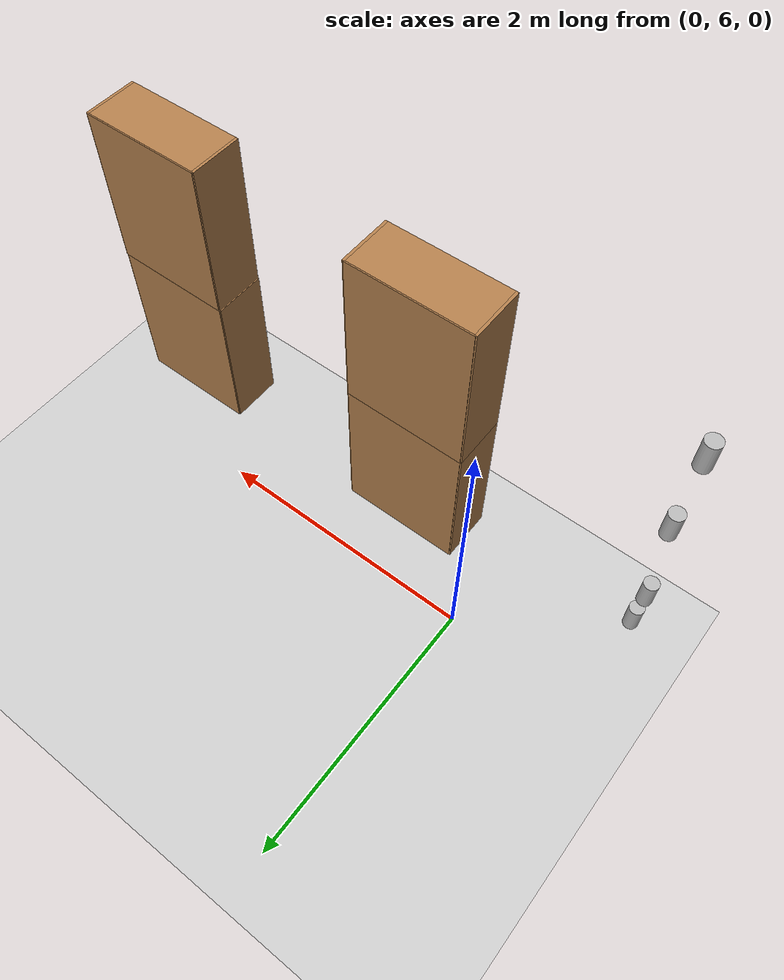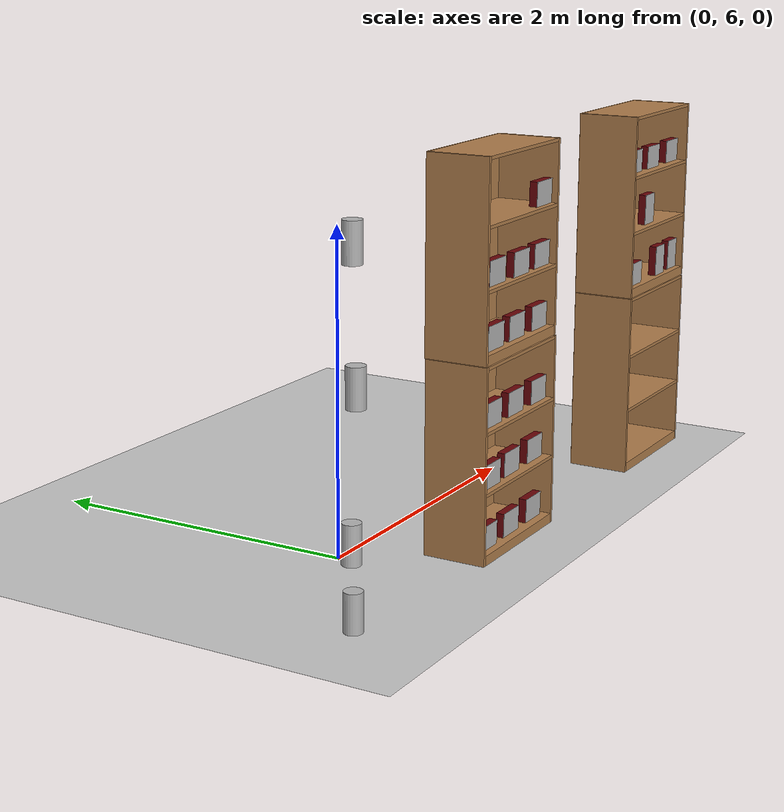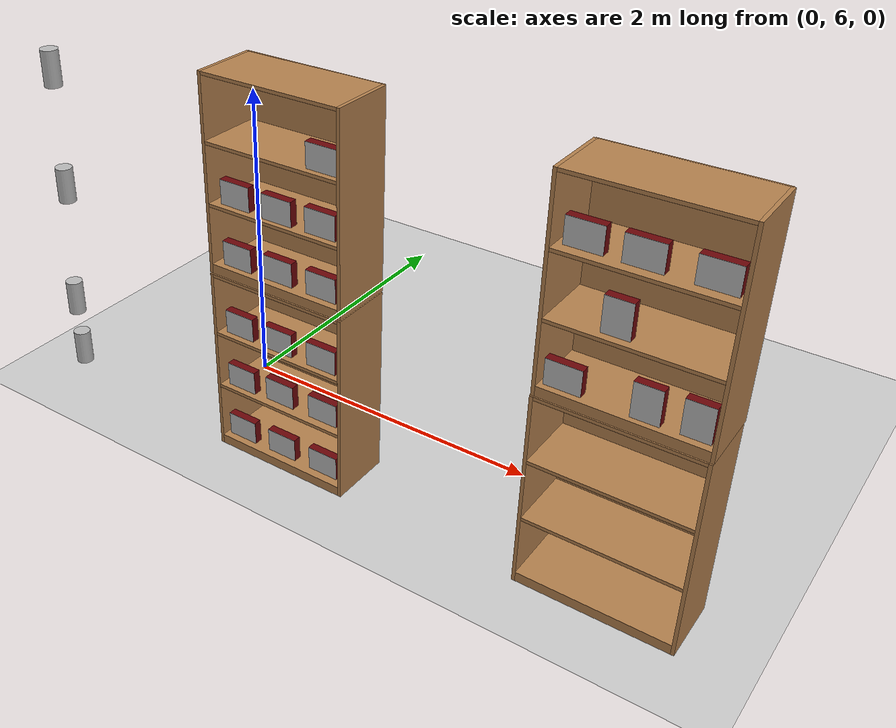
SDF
<sdf version="1.7">
 <world name="default">
  <model name="ground_plane">
   <static>1</static>
   <link name="link">
    <collision name="collision">
     <geometry><plane><normal>0 0 1</normal><size>100 100</size></plane></geometry>
     <surface><friction><ode><mu>100</mu><mu2>50</mu2></ode></friction></surface>
    </collision>
    <visual name="visual">
     <cast_shadows>0</cast_shadows>
     <geometry><plane><normal>0 0 1</normal><size>100 100</size></plane></geometry>
     <material>
      <script><uri>file://media/materials/scripts/gazebo.material</uri><name>Gazebo/Grey</name></script>
     </material>
    </visual>
   </link>
  </model>
  <model name="bookshelf">
   <static>1</static>
   <link name="link">
    <inertial><mass>1</mass></inertial>
    <collision name="back">
     <pose>0 0.005 0.6 0 -0 0</pose>
     <geometry><box><size>0.9 0.01 1.2</size></box></geometry>
    </collision>
    <visual name="visual1">
     <pose>0 0.005 0.6 0 -0 0</pose>
     <geometry><box><size>0.9 0.01 1.2</size></box></geometry>
     <material>
      <script><uri>file://media/materials/scripts/gazebo.material</uri><name>Gazebo/Wood</name></script>
     </material>
    </visual>
    <collision name="left_side">
     <pose>0.45 -0.195 0.6 0 -0 0</pose>
     <geometry><box><size>0.02 0.4 1.2</size></box></geometry>
    </collision>
    <visual name="visual2">
     <pose>0.45 -0.195 0.6 0 -0 0</pose>
     <geometry><box><size>0.02 0.4 1.2</size></box></geometry>
     <material>
      <script><uri>file://media/materials/scripts/gazebo.material</uri><name>Gazebo/Wood</name></script>
     </material>
    </visual>
    <collision name="right_side">
     <pose>-0.45 -0.195 0.6 0 -0 0</pose>
     <geometry><box><size>0.02 0.4 1.2</size></box></geometry>
    </collision>
    <visual name="visual3">
     <pose>-0.45 -0.195 0.6 0 -0 0</pose>
     <geometry><box><size>0.02 0.4 1.2</size></box></geometry>
     <material>
      <script><uri>file://media/materials/scripts/gazebo.material</uri><name>Gazebo/Wood</name></script>
     </material>
    </visual>
    <collision name="bottom">
     <pose>0 -0.195 0.03 0 -0 0</pose>
     <geometry><box><size>0.88 0.4 0.06</size></box></geometry>
    </collision>
    <visual name="visual4">
     <pose>0 -0.195 0.03 0 -0 0</pose>
     <geometry><box><size>0.88 0.4 0.06</size></box></geometry>
     <material>
      <script><uri>file://media/materials/scripts/gazebo.material</uri><name>Gazebo/Wood</name></script>
     </material>
    </visual>
    <collision name="top">
     <pose>0 -0.195 1.19 0 -0 0</pose>
     <geometry><box><size>0.88 0.4 0.02</size></box></geometry>
    </collision>
    <visual name="visual5">
     <pose>0 -0.195 1.19 0 -0 0</pose>
     <geometry><box><size>0.88 0.4 0.02</size></box></geometry>
     <material>
      <script><uri>file://media/materials/scripts/gazebo.material</uri><name>Gazebo/Wood</name></script>
     </material>
    </visual>
    <collision name="low_shelf">
     <pose>0 -0.195 0.43 0 -0 0</pose>
     <geometry><box><size>0.88 0.4 0.02</size></box></geometry>
    </collision>
    <visual name="visual6">
     <pose>0 -0.195 0.43 0 -0 0</pose>
     <geometry><box><size>0.88 0.4 0.02</size></box></geometry>
     <material>
      <script><uri>file://media/materials/scripts/gazebo.material</uri><name>Gazebo/Wood</name></script>
     </material>
    </visual>
    <collision name="high_shelf">
     <pose>0 -0.195 0.8 0 -0 0</pose>
     <geometry><box><size>0.88 0.4 0.02</size></box></geometry>
    </collision>
    <visual name="visual7">
     <pose>0 -0.195 0.8 0 -0 0</pose>
     <geometry><box><size>0.88 0.4 0.02</size></box></geometry>
     <material>
      <script><uri>file://media/materials/scripts/gazebo.material</uri><name>Gazebo/Wood</name></script>
     </material>
    </visual>
   </link>
   <pose>2.83268 5.58259 0 0 -0 0</pose>
  </model>
  <model name="bookshelf_1">
   <static>1</static>
   <link name="link">
    <inertial><mass>1</mass></inertial>
    <collision name="back">
     <pose>0 0.005 0.6 0 -0 0</pose>
     <geometry><box><size>0.9 0.01 1.2</size></box></geometry>
    </collision>
    <visual name="visual1">
     <pose>0 0.005 0.6 0 -0 0</pose>
     <geometry><box><size>0.9 0.01 1.2</size></box></geometry>
     <material>
      <script><uri>file://media/materials/scripts/gazebo.material</uri><name>Gazebo/Wood</name></script>
     </material>
    </visual>
    <collision name="left_side">
     <pose>0.45 -0.195 0.6 0 -0 0</pose>
     <geometry><box><size>0.02 0.4 1.2</size></box></geometry>
    </collision>
    <visual name="visual2">
     <pose>0.45 -0.195 0.6 0 -0 0</pose>
     <geometry><box><size>0.02 0.4 1.2</size></box></geometry>
     <material>
      <script><uri>file://media/materials/scripts/gazebo.material</uri><name>Gazebo/Wood</name></script>
     </material>
    </visual>
    <collision name="right_side">
     <pose>-0.45 -0.195 0.6 0 -0 0</pose>
     <geometry><box><size>0.02 0.4 1.2</size></box></geometry>
    </collision>
    <visual name="visual3">
     <pose>-0.45 -0.195 0.6 0 -0 0</pose>
     <geometry><box><size>0.02 0.4 1.2</size></box></geometry>
     <material>
      <script><uri>file://media/materials/scripts/gazebo.material</uri><name>Gazebo/Wood</name></script>
     </material>
    </visual>
    <collision name="bottom">
     <pose>0 -0.195 0.03 0 -0 0</pose>
     <geometry><box><size>0.88 0.4 0.06</size></box></geometry>
    </collision>
    <visual name="visual4">
     <pose>0 -0.195 0.03 0 -0 0</pose>
     <geometry><box><size>0.88 0.4 0.06</size></box></geometry>
     <material>
      <script><uri>file://media/materials/scripts/gazebo.material</uri><name>Gazebo/Wood</name></script>
     </material>
    </visual>
    <collision name="top">
     <pose>0 -0.195 1.19 0 -0 0</pose>
     <geometry><box><size>0.88 0.4 0.02</size></box></geometry>
    </collision>
    <visual name="visual5">
     <pose>0 -0.195 1.19 0 -0 0</pose>
     <geometry><box><size>0.88 0.4 0.02</size></box></geometry>
     <material>
      <script><uri>file://media/materials/scripts/gazebo.material</uri><name>Gazebo/Wood</name></script>
     </material>
    </visual>
    <collision name="low_shelf">
     <pose>0 -0.195 0.43 0 -0 0</pose>
     <geometry><box><size>0.88 0.4 0.02</size></box></geometry>
    </collision>
    <visual name="visual6">
     <pose>0 -0.195 0.43 0 -0 0</pose>
     <geometry><box><size>0.88 0.4 0.02</size></box></geometry>
     <material>
      <script><uri>file://media/materials/scripts/gazebo.material</uri><name>Gazebo/Wood</name></script>
     </material>
    </visual>
    <collision name="high_shelf">
     <pose>0 -0.195 0.8 0 -0 0</pose>
     <geometry><box><size>0.88 0.4 0.02</size></box></geometry>
    </collision>
    <visual name="visual7">
     <pose>0 -0.195 0.8 0 -0 0</pose>
     <geometry><box><size>0.88 0.4 0.02</size></box></geometry>
     <material>
      <script><uri>file://media/materials/scripts/gazebo.material</uri><name>Gazebo/Wood</name></script>
     </material>
    </visual>
   </link>
   <pose>0.770602 5.5901 0 0 -0 0</pose>
  </model>
  <model name="bookshelf_3_clone_clone_0">
   <static>1</static>
   <link name="link">
    <inertial><mass>1</mass></inertial>
    <collision name="back">
     <pose>0 0.005 0.6 0 -0 0</pose>
     <geometry><box><size>0.9 0.01 1.2</size></box></geometry>
    </collision>
    <visual name="visual1">
     <pose>0 0.005 0.6 0 -0 0</pose>
     <geometry><box><size>0.9 0.01 1.2</size></box></geometry>
     <material>
      <script><uri>file://media/materials/scripts/gazebo.material</uri><name>Gazebo/Wood</name></script>
     </material>
    </visual>
    <collision name="left_side">
     <pose>0.45 -0.195 0.6 0 -0 0</pose>
     <geometry><box><size>0.02 0.4 1.2</size></box></geometry>
    </collision>
    <visual name="visual2">
     <pose>0.45 -0.195 0.6 0 -0 0</pose>
     <geometry><box><size>0.02 0.4 1.2</size></box></geometry>
     <material>
      <script><uri>file://media/materials/scripts/gazebo.material</uri><name>Gazebo/Wood</name></script>
     </material>
    </visual>
    <collision name="right_side">
     <pose>-0.45 -0.195 0.6 0 -0 0</pose>
     <geometry><box><size>0.02 0.4 1.2</size></box></geometry>
    </collision>
    <visual name="visual3">
     <pose>-0.45 -0.195 0.6 0 -0 0</pose>
     <geometry><box><size>0.02 0.4 1.2</size></box></geometry>
     <material>
      <script><uri>file://media/materials/scripts/gazebo.material</uri><name>Gazebo/Wood</name></script>
     </material>
    </visual>
    <collision name="bottom">
     <pose>0 -0.195 0.03 0 -0 0</pose>
     <geometry><box><size>0.88 0.4 0.06</size></box></geometry>
    </collision>
    <visual name="visual4">
     <pose>0 -0.195 0.03 0 -0 0</pose>
     <geometry><box><size>0.88 0.4 0.06</size></box></geometry>
     <material>
      <script><uri>file://media/materials/scripts/gazebo.material</uri><name>Gazebo/Wood</name></script>
     </material>
    </visual>
    <collision name="top">
     <pose>0 -0.195 1.19 0 -0 0</pose>
     <geometry><box><size>0.88 0.4 0.02</size></box></geometry>
    </collision>
    <visual name="visual5">
     <pose>0 -0.195 1.19 0 -0 0</pose>
     <geometry><box><size>0.88 0.4 0.02</size></box></geometry>
     <material>
      <script><uri>file://media/materials/scripts/gazebo.material</uri><name>Gazebo/Wood</name></script>
     </material>
    </visual>
    <collision name="low_shelf">
     <pose>0 -0.195 0.43 0 -0 0</pose>
     <geometry><box><size>0.88 0.4 0.02</size></box></geometry>
    </collision>
    <visual name="visual6">
     <pose>0 -0.195 0.43 0 -0 0</pose>
     <geometry><box><size>0.88 0.4 0.02</size></box></geometry>
     <material>
      <script><uri>file://media/materials/scripts/gazebo.material</uri><name>Gazebo/Wood</name></script>
     </material>
    </visual>
    <collision name="high_shelf">
     <pose>0 -0.195 0.8 0 -0 0</pose>
     <geometry><box><size>0.88 0.4 0.02</size></box></geometry>
    </collision>
    <visual name="visual7">
     <pose>0 -0.195 0.8 0 -0 0</pose>
     <geometry><box><size>0.88 0.4 0.02</size></box></geometry>
     <material>
      <script><uri>file://media/materials/scripts/gazebo.material</uri><name>Gazebo/Wood</name></script>
     </material>
    </visual>
   </link>
   <pose>0.76852 5.59426 1.20481 0 -0 0</pose>
  </model>
  <model name="bookshelf_3_clone_clone_1">
   <static>1</static>
   <link name="link">
    <inertial><mass>1</mass></inertial>
    <collision name="back">
     <pose>0 0.005 0.6 0 -0 0</pose>
     <geometry><box><size>0.9 0.01 1.2</size></box></geometry>
    </collision>
    <visual name="visual1">
     <pose>0 0.005 0.6 0 -0 0</pose>
     <geometry><box><size>0.9 0.01 1.2</size></box></geometry>
     <material>
      <script><uri>file://media/materials/scripts/gazebo.material</uri><name>Gazebo/Wood</name></script>
     </material>
    </visual>
    <collision name="left_side">
     <pose>0.45 -0.195 0.6 0 -0 0</pose>
     <geometry><box><size>0.02 0.4 1.2</size></box></geometry>
    </collision>
    <visual name="visual2">
     <pose>0.45 -0.195 0.6 0 -0 0</pose>
     <geometry><box><size>0.02 0.4 1.2</size></box></geometry>
     <material>
      <script><uri>file://media/materials/scripts/gazebo.material</uri><name>Gazebo/Wood</name></script>
     </material>
    </visual>
    <collision name="right_side">
     <pose>-0.45 -0.195 0.6 0 -0 0</pose>
     <geometry><box><size>0.02 0.4 1.2</size></box></geometry>
    </collision>
    <visual name="visual3">
     <pose>-0.45 -0.195 0.6 0 -0 0</pose>
     <geometry><box><size>0.02 0.4 1.2</size></box></geometry>
     <material>
      <script><uri>file://media/materials/scripts/gazebo.material</uri><name>Gazebo/Wood</name></script>
     </material>
    </visual>
    <collision name="bottom">
     <pose>0 -0.195 0.03 0 -0 0</pose>
     <geometry><box><size>0.88 0.4 0.06</size></box></geometry>
    </collision>
    <visual name="visual4">
     <pose>0 -0.195 0.03 0 -0 0</pose>
     <geometry><box><size>0.88 0.4 0.06</size></box></geometry>
     <material>
      <script><uri>file://media/materials/scripts/gazebo.material</uri><name>Gazebo/Wood</name></script>
     </material>
    </visual>
    <collision name="top">
     <pose>0 -0.195 1.19 0 -0 0</pose>
     <geometry><box><size>0.88 0.4 0.02</size></box></geometry>
    </collision>
    <visual name="visual5">
     <pose>0 -0.195 1.19 0 -0 0</pose>
     <geometry><box><size>0.88 0.4 0.02</size></box></geometry>
     <material>
      <script><uri>file://media/materials/scripts/gazebo.material</uri><name>Gazebo/Wood</name></script>
     </material>
    </visual>
    <collision name="low_shelf">
     <pose>0 -0.195 0.43 0 -0 0</pose>
     <geometry><box><size>0.88 0.4 0.02</size></box></geometry>
    </collision>
    <visual name="visual6">
     <pose>0 -0.195 0.43 0 -0 0</pose>
     <geometry><box><size>0.88 0.4 0.02</size></box></geometry>
     <material>
      <script><uri>file://media/materials/scripts/gazebo.material</uri><name>Gazebo/Wood</name></script>
     </material>
    </visual>
    <collision name="high_shelf">
     <pose>0 -0.195 0.8 0 -0 0</pose>
     <geometry><box><size>0.88 0.4 0.02</size></box></geometry>
    </collision>
    <visual name="visual7">
     <pose>0 -0.195 0.8 0 -0 0</pose>
     <geometry><box><size>0.88 0.4 0.02</size></box></geometry>
     <material>
      <script><uri>file://media/materials/scripts/gazebo.material</uri><name>Gazebo/Wood</name></script>
     </material>
    </visual>
   </link>
   <pose>2.83627 5.58516 1.20481 0 -0 0</pose>
  </model>
  <model name="beer_1_clone_1">
   <link name="link">
    <pose>0 0 0.115 0 -0 0</pose>
    <inertial>
     <mass>0.39</mass>
     <inertia><ixx>0.00058</ixx><ixy>0</ixy><ixz>0</ixz><iyy>0.00058</iyy><iyz>0</iyz><izz>0.00019</izz></inertia>
    </inertial>
    <collision name="collision">
     <geometry><cylinder><radius>0.055</radius><length>0.23</length></cylinder></geometry>
    </collision>
    <visual name="visual">
     <geometry><cylinder><radius>0.055</radius><length>0.23</length></cylinder></geometry>
     <material>
      <script>
       <uri>model://beer/materials/scripts</uri>
       <uri>model://beer/materials/textures</uri>
       <name>Beer/Diffuse</name>
      </script>
     </material>
    </visual>
   </link>
   <pose>-1.00016 5.28662 0.059991 1.7e-05 -1.2e-05 0.010684</pose>
  </model>
  <model name="beer_3_clone_1_clone_1">
   <link name="link">
    <pose>0 0 0.115 0 -0 0</pose>
    <inertial>
     <mass>0.39</mass>
     <inertia><ixx>0.00058</ixx><ixy>0</ixy><ixz>0</ixz><iyy>0.00058</iyy><iyz>0</iyz><izz>0.00019</izz></inertia>
    </inertial>
    <collision name="collision">
     <geometry><cylinder><radius>0.055</radius><length>0.23</length></cylinder></geometry>
    </collision>
    <visual name="visual">
     <geometry><cylinder><radius>0.055</radius><length>0.23</length></cylinder></geometry>
     <material>
      <script>
       <uri>model://beer/materials/scripts</uri>
       <uri>model://beer/materials/textures</uri>
       <name>Beer/Diffuse</name>
      </script>
     </material>
    </visual>
   </link>
   <pose>-1.01357 5.288 0.440001 1e-05 -1.2e-05 0.004628</pose>
  </model>
  <model name="biscuit_box">
   <link name="link">
    <pose>0 0 0.025 0 -0 0</pose>
    <visual name="visual">
     <geometry><box><size>0.2 0.15 0.05</size></box></geometry>
     <material>
      <ambient>0.423 0.019 0.035 1</ambient>
      <diffuse>0.423 0.019 0.035 1</diffuse>
      <specular>0.01 0.01 0.01 1</specular>
      <emissive>0 0 0 1</emissive>
     </material>
    </visual>
    <collision name="collision"><geometry><box><size>0.1 0.1 0.15</size></box></geometry></collision>
   </link>
   <link name="link_1">
    <pose>0 0 0.05 0 -0 0</pose>
    <visual name="visual">
     <geometry><box><size>0.2 0.15 0.001</size></box></geometry>
     <material>
      <script>
       <uri>model://biscuit_box/materials/scripts</uri>
       <uri>model://biscuit_box/materials/textures</uri>
       <name>biscuit_pat</name>
      </script>
     </material>
    </visual>
    <collision name="collision"><geometry><box><size>0.1 0.1 0.15</size></box></geometry></collision>
   </link>
   <static>1</static>
   <pose>0.456028 5.28742 0.137981 1.59184 -0 0</pose>
  </model>
  <model name="biscuit_box_clone">
   <link name="link">
    <pose>0 0 0.025 0 -0 0</pose>
    <visual name="visual">
     <geometry><box><size>0.2 0.15 0.05</size></box></geometry>
     <material>
      <ambient>0.423 0.019 0.035 1</ambient>
      <diffuse>0.423 0.019 0.035 1</diffuse>
      <specular>0.01 0.01 0.01 1</specular>
      <emissive>0 0 0 1</emissive>
     </material>
    </visual>
    <collision name="collision"><geometry><box><size>0.1 0.1 0.15</size></box></geometry></collision>
   </link>
   <link name="link_1">
    <pose>0 0 0.05 0 -0 0</pose>
    <visual name="visual">
     <geometry><box><size>0.2 0.15 0.001</size></box></geometry>
     <material>
      <script>
       <uri>model://biscuit_box/materials/scripts</uri>
       <uri>model://biscuit_box/materials/textures</uri>
       <name>biscuit_pat</name>
      </script>
     </material>
    </visual>
    <collision name="collision"><geometry><box><size>0.1 0.1 0.15</size></box></geometry></collision>
   </link>
   <static>1</static>
   <pose>0.756443 5.29336 0.137981 1.59184 -0 0</pose>
  </model>
  <model name="biscuit_box_clone_clone">
   <link name="link">
    <pose>0 0 0.025 0 -0 0</pose>
    <visual name="visual">
     <geometry><box><size>0.2 0.15 0.05</size></box></geometry>
     <material>
      <ambient>0.423 0.019 0.035 1</ambient>
      <diffuse>0.423 0.019 0.035 1</diffuse>
      <specular>0.01 0.01 0.01 1</specular>
      <emissive>0 0 0 1</emissive>
     </material>
    </visual>
    <collision name="collision"><geometry><box><size>0.1 0.1 0.15</size></box></geometry></collision>
   </link>
   <link name="link_1">
    <pose>0 0 0.05 0 -0 0</pose>
    <visual name="visual">
     <geometry><box><size>0.2 0.15 0.001</size></box></geometry>
     <material>
      <script>
       <uri>model://biscuit_box/materials/scripts</uri>
       <uri>model://biscuit_box/materials/textures</uri>
       <name>biscuit_pat</name>
      </script>
     </material>
    </visual>
    <collision name="collision"><geometry><box><size>0.1 0.1 0.15</size></box></geometry></collision>
   </link>
   <static>1</static>
   <pose>1.062 5.29498 0.137981 1.59184 -0 0</pose>
  </model>
  <model name="biscuit_box_clone_0_clone">
   <link name="link">
    <pose>0 0 0.025 0 -0 0</pose>
    <visual name="visual">
     <geometry><box><size>0.2 0.15 0.05</size></box></geometry>
     <material>
      <ambient>0.423 0.019 0.035 1</ambient>
      <diffuse>0.423 0.019 0.035 1</diffuse>
      <specular>0.01 0.01 0.01 1</specular>
      <emissive>0 0 0 1</emissive>
     </material>
    </visual>
    <collision name="collision"><geometry><box><size>0.1 0.1 0.15</size></box></geometry></collision>
   </link>
   <link name="link_1">
    <pose>0 0 0.05 0 -0 0</pose>
    <visual name="visual">
     <geometry><box><size>0.2 0.15 0.001</size></box></geometry>
     <material>
      <script>
       <uri>model://biscuit_box/materials/scripts</uri>
       <uri>model://biscuit_box/materials/textures</uri>
       <name>biscuit_pat</name>
      </script>
     </material>
    </visual>
    <collision name="collision"><geometry><box><size>0.1 0.1 0.15</size></box></geometry></collision>
   </link>
   <static>1</static>
   <pose>0.752248 5.29333 0.517024 1.59184 -0 0</pose>
  </model>
  <model name="biscuit_box_clone_0_clone_clone">
   <link name="link">
    <pose>0 0 0.025 0 -0 0</pose>
    <visual name="visual">
     <geometry><box><size>0.2 0.15 0.05</size></box></geometry>
     <material>
      <ambient>0.423 0.019 0.035 1</ambient>
      <diffuse>0.423 0.019 0.035 1</diffuse>
      <specular>0.01 0.01 0.01 1</specular>
      <emissive>0 0 0 1</emissive>
     </material>
    </visual>
    <collision name="collision"><geometry><box><size>0.1 0.1 0.15</size></box></geometry></collision>
   </link>
   <link name="link_1">
    <pose>0 0 0.05 0 -0 0</pose>
    <visual name="visual">
     <geometry><box><size>0.2 0.15 0.001</size></box></geometry>
     <material>
      <script>
       <uri>model://biscuit_box/materials/scripts</uri>
       <uri>model://biscuit_box/materials/textures</uri>
       <name>biscuit_pat</name>
      </script>
     </material>
    </visual>
    <collision name="collision"><geometry><box><size>0.1 0.1 0.15</size></box></geometry></collision>
   </link>
   <static>1</static>
   <pose>1.06428 5.29499 0.517024 1.59184 -0 0</pose>
  </model>
  <model name="beer_3_clone_clone_clone_clone_1_clone_1_clone_0">
   <link name="link">
    <pose>0 0 0.115 0 -0 0</pose>
    <inertial>
     <mass>0.39</mass>
     <inertia><ixx>0.00058</ixx><ixy>0</ixy><ixz>0</ixz><iyy>0.00058</iyy><iyz>0</iyz><izz>0.00019</izz></inertia>
    </inertial>
    <collision name="collision">
     <geometry><cylinder><radius>0.055</radius><length>0.23</length></cylinder></geometry>
    </collision>
    <visual name="visual">
     <geometry><cylinder><radius>0.055</radius><length>0.23</length></cylinder></geometry>
     <material>
      <script>
       <uri>model://beer/materials/scripts</uri>
       <uri>model://beer/materials/textures</uri>
       <name>Beer/Diffuse</name>
      </script>
     </material>
    </visual>
   </link>
   <pose>-0.965632 5.28994 1.2648 0 -1.4e-05 0.025683</pose>
  </model>
  <model name="beer_3_clone_clone_clone_clone_1_clone_2_clone_clone_clone_1_clone">
   <link name="link">
    <pose>0 0 0.115 0 -0 0</pose>
    <inertial>
     <mass>0.39</mass>
     <inertia><ixx>0.00058</ixx><ixy>0</ixy><ixz>0</ixz><iyy>0.00058</iyy><iyz>0</iyz><izz>0.00019</izz></inertia>
    </inertial>
    <collision name="collision">
     <geometry><cylinder><radius>0.055</radius><length>0.23</length></cylinder></geometry>
    </collision>
    <visual name="visual">
     <geometry><cylinder><radius>0.055</radius><length>0.23</length></cylinder></geometry>
     <material>
      <script>
       <uri>model://beer/materials/scripts</uri>
       <uri>model://beer/materials/textures</uri>
       <name>Beer/Diffuse</name>
      </script>
     </material>
    </visual>
   </link>
   <pose>-0.972408 5.30442 2.01481 2e-05 1.3e-05 0.02896</pose>
  </model>
  <model name="biscuit_box_clone_0_clone_0_clone">
   <link name="link">
    <pose>0 0 0.025 0 -0 0</pose>
    <visual name="visual">
     <geometry><box><size>0.2 0.15 0.05</size></box></geometry>
     <material>
      <ambient>0.423 0.019 0.035 1</ambient>
      <diffuse>0.423 0.019 0.035 1</diffuse>
      <specular>0.01 0.01 0.01 1</specular>
      <emissive>0 0 0 1</emissive>
     </material>
    </visual>
    <collision name="collision"><geometry><box><size>0.1 0.1 0.15</size></box></geometry></collision>
   </link>
   <link name="link_1">
    <pose>0 0 0.05 0 -0 0</pose>
    <visual name="visual">
     <geometry><box><size>0.2 0.15 0.001</size></box></geometry>
     <material>
      <script>
       <uri>model://biscuit_box/materials/scripts</uri>
       <uri>model://biscuit_box/materials/textures</uri>
       <name>biscuit_pat</name>
      </script>
     </material>
    </visual>
    <collision name="collision"><geometry><box><size>0.1 0.1 0.15</size></box></geometry></collision>
   </link>
   <static>1</static>
   <pose>0.763462 5.2801 0.888325 1.59184 -0 0</pose>
  </model>
  <model name="biscuit_box_clone_0_clone_0_clone_0">
   <link name="link">
    <pose>0 0 0.025 0 -0 0</pose>
    <visual name="visual">
     <geometry><box><size>0.2 0.15 0.05</size></box></geometry>
     <material>
      <ambient>0.423 0.019 0.035 1</ambient>
      <diffuse>0.423 0.019 0.035 1</diffuse>
      <specular>0.01 0.01 0.01 1</specular>
      <emissive>0 0 0 1</emissive>
     </material>
    </visual>
    <collision name="collision"><geometry><box><size>0.1 0.1 0.15</size></box></geometry></collision>
   </link>
   <link name="link_1">
    <pose>0 0 0.05 0 -0 0</pose>
    <visual name="visual">
     <geometry><box><size>0.2 0.15 0.001</size></box></geometry>
     <material>
      <script>
       <uri>model://biscuit_box/materials/scripts</uri>
       <uri>model://biscuit_box/materials/textures</uri>
       <name>biscuit_pat</name>
      </script>
     </material>
    </visual>
    <collision name="collision"><geometry><box><size>0.1 0.1 0.15</size></box></geometry></collision>
   </link>
   <static>1</static>
   <pose>1.06906 5.27977 0.888325 1.59184 -0 0</pose>
  </model>
  <model name="biscuit_box_clone_0_clone_0_clone_1">
   <link name="link">
    <pose>0 0 0.025 0 -0 0</pose>
    <visual name="visual">
     <geometry><box><size>0.2 0.15 0.05</size></box></geometry>
     <material>
      <ambient>0.423 0.019 0.035 1</ambient>
      <diffuse>0.423 0.019 0.035 1</diffuse>
      <specular>0.01 0.01 0.01 1</specular>
      <emissive>0 0 0 1</emissive>
     </material>
    </visual>
    <collision name="collision"><geometry><box><size>0.1 0.1 0.15</size></box></geometry></collision>
   </link>
   <link name="link_1">
    <pose>0 0 0.05 0 -0 0</pose>
    <visual name="visual">
     <geometry><box><size>0.2 0.15 0.001</size></box></geometry>
     <material>
      <script>
       <uri>model://biscuit_box/materials/scripts</uri>
       <uri>model://biscuit_box/materials/textures</uri>
       <name>biscuit_pat</name>
      </script>
     </material>
    </visual>
    <collision name="collision"><geometry><box><size>0.1 0.1 0.15</size></box></geometry></collision>
   </link>
   <static>1</static>
   <pose>0.773197 5.28722 1.34511 1.59184 -0 0</pose>
  </model>
  <model name="biscuit_box_clone_0_clone_0_clone_2">
   <link name="link">
    <pose>0 0 0.025 0 -0 0</pose>
    <visual name="visual">
     <geometry><box><size>0.2 0.15 0.05</size></box></geometry>
     <material>
      <ambient>0.423 0.019 0.035 1</ambient>
      <diffuse>0.423 0.019 0.035 1</diffuse>
      <specular>0.01 0.01 0.01 1</specular>
      <emissive>0 0 0 1</emissive>
     </material>
    </visual>
    <collision name="collision"><geometry><box><size>0.1 0.1 0.15</size></box></geometry></collision>
   </link>
   <link name="link_1">
    <pose>0 0 0.05 0 -0 0</pose>
    <visual name="visual">
     <geometry><box><size>0.2 0.15 0.001</size></box></geometry>
     <material>
      <script>
       <uri>model://biscuit_box/materials/scripts</uri>
       <uri>model://biscuit_box/materials/textures</uri>
       <name>biscuit_pat</name>
      </script>
     </material>
    </visual>
    <collision name="collision"><geometry><box><size>0.1 0.1 0.15</size></box></geometry></collision>
   </link>
   <static>1</static>
   <pose>0.789359 5.27296 1.72474 1.59184 -0 0</pose>
  </model>
  <model name="biscuit_box_clone_0_clone_0_clone_clone">
   <link name="link">
    <pose>0 0 0.025 0 -0 0</pose>
    <visual name="visual">
     <geometry><box><size>0.2 0.15 0.05</size></box></geometry>
     <material>
      <ambient>0.423 0.019 0.035 1</ambient>
      <diffuse>0.423 0.019 0.035 1</diffuse>
      <specular>0.01 0.01 0.01 1</specular>
      <emissive>0 0 0 1</emissive>
     </material>
    </visual>
    <collision name="collision"><geometry><box><size>0.1 0.1 0.15</size></box></geometry></collision>
   </link>
   <link name="link_1">
    <pose>0 0 0.05 0 -0 0</pose>
    <visual name="visual">
     <geometry><box><size>0.2 0.15 0.001</size></box></geometry>
     <material>
      <script>
       <uri>model://biscuit_box/materials/scripts</uri>
       <uri>model://biscuit_box/materials/textures</uri>
       <name>biscuit_pat</name>
      </script>
     </material>
    </visual>
    <collision name="collision"><geometry><box><size>0.1 0.1 0.15</size></box></geometry></collision>
   </link>
   <static>1</static>
   <pose>0.479258 5.2804 0.888325 1.59184 -0 0</pose>
  </model>
  <model name="biscuit_box_clone_0_clone_clone_0">
   <link name="link">
    <pose>0 0 0.025 0 -0 0</pose>
    <visual name="visual">
     <geometry><box><size>0.2 0.15 0.05</size></box></geometry>
     <material>
      <ambient>0.423 0.019 0.035 1</ambient>
      <diffuse>0.423 0.019 0.035 1</diffuse>
      <specular>0.01 0.01 0.01 1</specular>
      <emissive>0 0 0 1</emissive>
     </material>
    </visual>
    <collision name="collision"><geometry><box><size>0.1 0.1 0.15</size></box></geometry></collision>
   </link>
   <link name="link_1">
    <pose>0 0 0.05 0 -0 0</pose>
    <visual name="visual">
     <geometry><box><size>0.2 0.15 0.001</size></box></geometry>
     <material>
      <script>
       <uri>model://biscuit_box/materials/scripts</uri>
       <uri>model://biscuit_box/materials/textures</uri>
       <name>biscuit_pat</name>
      </script>
     </material>
    </visual>
    <collision name="collision"><geometry><box><size>0.1 0.1 0.15</size></box></geometry></collision>
   </link>
   <static>1</static>
   <pose>0.474168 5.2804 0.517024 1.59184 -0 0</pose>
  </model>
  <model name="biscuit_box_clone_0_clone_0_clone_1_clone">
   <link name="link">
    <pose>0 0 0.025 0 -0 0</pose>
    <visual name="visual">
     <geometry><box><size>0.2 0.15 0.05</size></box></geometry>
     <material>
      <ambient>0.423 0.019 0.035 1</ambient>
      <diffuse>0.423 0.019 0.035 1</diffuse>
      <specular>0.01 0.01 0.01 1</specular>
      <emissive>0 0 0 1</emissive>
     </material>
    </visual>
    <collision name="collision"><geometry><box><size>0.1 0.1 0.15</size></box></geometry></collision>
   </link>
   <link name="link_1">
    <pose>0 0 0.05 0 -0 0</pose>
    <visual name="visual">
     <geometry><box><size>0.2 0.15 0.001</size></box></geometry>
     <material>
      <script>
       <uri>model://biscuit_box/materials/scripts</uri>
       <uri>model://biscuit_box/materials/textures</uri>
       <name>biscuit_pat</name>
      </script>
     </material>
    </visual>
    <collision name="collision"><geometry><box><size>0.1 0.1 0.15</size></box></geometry></collision>
   </link>
   <static>1</static>
   <pose>1.06994 5.28691 1.34511 1.59184 -0 0</pose>
  </model>
  <model name="biscuit_box_clone_0_clone_0_clone_1_clone_0">
   <link name="link">
    <pose>0 0 0.025 0 -0 0</pose>
    <visual name="visual">
     <geometry><box><size>0.2 0.15 0.05</size></box></geometry>
     <material>
      <ambient>0.423 0.019 0.035 1</ambient>
      <diffuse>0.423 0.019 0.035 1</diffuse>
      <specular>0.01 0.01 0.01 1</specular>
      <emissive>0 0 0 1</emissive>
     </material>
    </visual>
    <collision name="collision"><geometry><box><size>0.1 0.1 0.15</size></box></geometry></collision>
   </link>
   <link name="link_1">
    <pose>0 0 0.05 0 -0 0</pose>
    <visual name="visual">
     <geometry><box><size>0.2 0.15 0.001</size></box></geometry>
     <material>
      <script>
       <uri>model://biscuit_box/materials/scripts</uri>
       <uri>model://biscuit_box/materials/textures</uri>
       <name>biscuit_pat</name>
      </script>
     </material>
    </visual>
    <collision name="collision"><geometry><box><size>0.1 0.1 0.15</size></box></geometry></collision>
   </link>
   <static>1</static>
   <pose>0.489445 5.28039 1.34511 1.59184 -0 0</pose>
  </model>
  <model name="biscuit_box_clone_0_clone_0_clone_2_clone">
   <link name="link">
    <pose>0 0 0.025 0 -0 0</pose>
    <visual name="visual">
     <geometry><box><size>0.2 0.15 0.05</size></box></geometry>
     <material>
      <ambient>0.423 0.019 0.035 1</ambient>
      <diffuse>0.423 0.019 0.035 1</diffuse>
      <specular>0.01 0.01 0.01 1</specular>
      <emissive>0 0 0 1</emissive>
     </material>
    </visual>
    <collision name="collision"><geometry><box><size>0.1 0.1 0.15</size></box></geometry></collision>
   </link>
   <link name="link_1">
    <pose>0 0 0.05 0 -0 0</pose>
    <visual name="visual">
     <geometry><box><size>0.2 0.15 0.001</size></box></geometry>
     <material>
      <script>
       <uri>model://biscuit_box/materials/scripts</uri>
       <uri>model://biscuit_box/materials/textures</uri>
       <name>biscuit_pat</name>
      </script>
     </material>
    </visual>
    <collision name="collision"><geometry><box><size>0.1 0.1 0.15</size></box></geometry></collision>
   </link>
   <static>1</static>
   <pose>1.07517 5.27977 1.72474 1.59184 -0 0</pose>
  </model>
  <model name="biscuit_box_clone_0_clone_0_clone_2_clone_0">
   <link name="link">
    <pose>0 0 0.025 0 -0 0</pose>
    <visual name="visual">
     <geometry><box><size>0.2 0.15 0.05</size></box></geometry>
     <material>
      <ambient>0.423 0.019 0.035 1</ambient>
      <diffuse>0.423 0.019 0.035 1</diffuse>
      <specular>0.01 0.01 0.01 1</specular>
      <emissive>0 0 0 1</emissive>
     </material>
    </visual>
    <collision name="collision"><geometry><box><size>0.1 0.1 0.15</size></box></geometry></collision>
   </link>
   <link name="link_1">
    <pose>0 0 0.05 0 -0 0</pose>
    <visual name="visual">
     <geometry><box><size>0.2 0.15 0.001</size></box></geometry>
     <material>
      <script>
       <uri>model://biscuit_box/materials/scripts</uri>
       <uri>model://biscuit_box/materials/textures</uri>
       <name>biscuit_pat</name>
      </script>
     </material>
    </visual>
    <collision name="collision"><geometry><box><size>0.1 0.1 0.15</size></box></geometry></collision>
   </link>
   <static>1</static>
   <pose>0.494542 5.28038 1.72474 1.59184 -0 0</pose>
  </model>
  <model name="biscuit_box_clone_0_clone_0_clone_3_clone">
   <link name="link">
    <pose>0 0 0.025 0 -0 0</pose>
    <visual name="visual">
     <geometry><box><size>0.2 0.15 0.05</size></box></geometry>
     <material>
      <ambient>0.423 0.019 0.035 1</ambient>
      <diffuse>0.423 0.019 0.035 1</diffuse>
      <specular>0.01 0.01 0.01 1</specular>
      <emissive>0 0 0 1</emissive>
     </material>
    </visual>
    <collision name="collision"><geometry><box><size>0.1 0.1 0.15</size></box></geometry></collision>
   </link>
   <link name="link_1">
    <pose>0 0 0.05 0 -0 0</pose>
    <visual name="visual">
     <geometry><box><size>0.2 0.15 0.001</size></box></geometry>
     <material>
      <script>
       <uri>model://biscuit_box/materials/scripts</uri>
       <uri>model://biscuit_box/materials/textures</uri>
       <name>biscuit_pat</name>
      </script>
     </material>
    </visual>
    <collision name="collision"><geometry><box><size>0.1 0.1 0.15</size></box></geometry></collision>
   </link>
   <static>1</static>
   <pose>1.09044 5.27975 2.09346 1.59184 -0 0</pose>
  </model>
  <model name="biscuit_box_clone_clone_clone_clone_clone_1_clone_clone_1_clone">
   <link name="link">
    <pose>0 0 0.025 0 -0 0</pose>
    <visual name="visual">
     <geometry><box><size>0.2 0.15 0.05</size></box></geometry>
     <material>
      <ambient>0.423 0.019 0.035 1</ambient>
      <diffuse>0.423 0.019 0.035 1</diffuse>
      <specular>0.01 0.01 0.01 1</specular>
      <emissive>0 0 0 1</emissive>
     </material>
    </visual>
    <collision name="collision"><geometry><box><size>0.1 0.1 0.15</size></box></geometry></collision>
   </link>
   <link name="link_1">
    <pose>0 0 0.05 0 -0 0</pose>
    <visual name="visual">
     <geometry><box><size>0.2 0.15 0.001</size></box></geometry>
     <material>
      <script>
       <uri>model://biscuit_box/materials/scripts</uri>
       <uri>model://biscuit_box/materials/textures</uri>
       <name>biscuit_pat</name>
      </script>
     </material>
    </visual>
    <collision name="collision"><geometry><box><size>0.1 0.1 0.15</size></box></geometry></collision>
   </link>
   <static>1</static>
   <pose>2.94144 5.26953 1.36753 -2.92419 -1.54924 -1.78824</pose>
  </model>
  <model name="biscuit_box_clone_clone_clone_clone_clone_1_clone_clone_1_clone_0">
   <link name="link">
    <pose>0 0 0.025 0 -0 0</pose>
    <visual name="visual">
     <geometry><box><size>0.2 0.15 0.05</size></box></geometry>
     <material>
      <ambient>0.423 0.019 0.035 1</ambient>
      <diffuse>0.423 0.019 0.035 1</diffuse>
      <specular>0.01 0.01 0.01 1</specular>
      <emissive>0 0 0 1</emissive>
     </material>
    </visual>
    <collision name="collision"><geometry><box><size>0.1 0.1 0.15</size></box></geometry></collision>
   </link>
   <link name="link_1">
    <pose>0 0 0.05 0 -0 0</pose>
    <visual name="visual">
     <geometry><box><size>0.2 0.15 0.001</size></box></geometry>
     <material>
      <script>
       <uri>model://biscuit_box/materials/scripts</uri>
       <uri>model://biscuit_box/materials/textures</uri>
       <name>biscuit_pat</name>
      </script>
     </material>
    </visual>
    <collision name="collision"><geometry><box><size>0.1 0.1 0.15</size></box></geometry></collision>
   </link>
   <static>1</static>
   <pose>3.18322 5.27953 1.36753 -2.92419 -1.54924 -1.78824</pose>
  </model>
  <model name="biscuit_box_clone_clone_clone_clone_clone_1_clone_clone_1_clone_1">
   <link name="link">
    <pose>0 0 0.025 0 -0 0</pose>
    <visual name="visual">
     <geometry><box><size>0.2 0.15 0.05</size></box></geometry>
     <material>
      <ambient>0.423 0.019 0.035 1</ambient>
      <diffuse>0.423 0.019 0.035 1</diffuse>
      <specular>0.01 0.01 0.01 1</specular>
      <emissive>0 0 0 1</emissive>
     </material>
    </visual>
    <collision name="collision"><geometry><box><size>0.1 0.1 0.15</size></box></geometry></collision>
   </link>
   <link name="link_1">
    <pose>0 0 0.05 0 -0 0</pose>
    <visual name="visual">
     <geometry><box><size>0.2 0.15 0.001</size></box></geometry>
     <material>
      <script>
       <uri>model://biscuit_box/materials/scripts</uri>
       <uri>model://biscuit_box/materials/textures</uri>
       <name>biscuit_pat</name>
      </script>
     </material>
    </visual>
    <collision name="collision"><geometry><box><size>0.1 0.1 0.15</size></box></geometry></collision>
   </link>
   <static>1</static>
   <pose>2.74403 5.2783 1.75021 -2.92419 -1.54924 -1.78824</pose>
  </model>
  <model name="biscuit_box_clone_0_clone_0_clone_3_clone_1">
   <link name="link">
    <pose>0 0 0.025 0 -0 0</pose>
    <visual name="visual">
     <geometry><box><size>0.2 0.15 0.05</size></box></geometry>
     <material>
      <ambient>0.423 0.019 0.035 1</ambient>
      <diffuse>0.423 0.019 0.035 1</diffuse>
      <specular>0.01 0.01 0.01 1</specular>
      <emissive>0 0 0 1</emissive>
     </material>
    </visual>
    <collision name="collision"><geometry><box><size>0.1 0.1 0.15</size></box></geometry></collision>
   </link>
   <link name="link_1">
    <pose>0 0 0.05 0 -0 0</pose>
    <visual name="visual">
     <geometry><box><size>0.2 0.15 0.001</size></box></geometry>
     <material>
      <script>
       <uri>model://biscuit_box/materials/scripts</uri>
       <uri>model://biscuit_box/materials/textures</uri>
       <name>biscuit_pat</name>
      </script>
     </material>
    </visual>
    <collision name="collision"><geometry><box><size>0.1 0.1 0.15</size></box></geometry></collision>
   </link>
   <static>1</static>
   <pose>2.53168 5.2983 2.09346 1.59184 -0 0</pose>
  </model>
  <model name="biscuit_box_clone_0_clone_0_clone_3_clone_2">
   <link name="link">
    <pose>0 0 0.025 0 -0 0</pose>
    <visual name="visual">
     <geometry><box><size>0.2 0.15 0.05</size></box></geometry>
     <material>
      <ambient>0.423 0.019 0.035 1</ambient>
      <diffuse>0.423 0.019 0.035 1</diffuse>
      <specular>0.01 0.01 0.01 1</specular>
      <emissive>0 0 0 1</emissive>
     </material>
    </visual>
    <collision name="collision"><geometry><box><size>0.1 0.1 0.15</size></box></geometry></collision>
   </link>
   <link name="link_1">
    <pose>0 0 0.05 0 -0 0</pose>
    <visual name="visual">
     <geometry><box><size>0.2 0.15 0.001</size></box></geometry>
     <material>
      <script>
       <uri>model://biscuit_box/materials/scripts</uri>
       <uri>model://biscuit_box/materials/textures</uri>
       <name>biscuit_pat</name>
      </script>
     </material>
    </visual>
    <collision name="collision"><geometry><box><size>0.1 0.1 0.15</size></box></geometry></collision>
   </link>
   <static>1</static>
   <pose>2.81809 5.29479 2.09346 1.59184 -0 0</pose>
  </model>
  <model name="biscuit_box_clone_0_clone_0_clone_3_clone_3">
   <link name="link">
    <pose>0 0 0.025 0 -0 0</pose>
    <visual name="visual">
     <geometry><box><size>0.2 0.15 0.05</size></box></geometry>
     <material>
      <ambient>0.423 0.019 0.035 1</ambient>
      <diffuse>0.423 0.019 0.035 1</diffuse>
      <specular>0.01 0.01 0.01 1</specular>
      <emissive>0 0 0 1</emissive>
     </material>
    </visual>
    <collision name="collision"><geometry><box><size>0.1 0.1 0.15</size></box></geometry></collision>
   </link>
   <link name="link_1">
    <pose>0 0 0.05 0 -0 0</pose>
    <visual name="visual">
     <geometry><box><size>0.2 0.15 0.001</size></box></geometry>
     <material>
      <script>
       <uri>model://biscuit_box/materials/scripts</uri>
       <uri>model://biscuit_box/materials/textures</uri>
       <name>biscuit_pat</name>
      </script>
     </material>
    </visual>
    <collision name="collision"><geometry><box><size>0.1 0.1 0.15</size></box></geometry></collision>
   </link>
   <static>1</static>
   <pose>3.14994 5.29639 2.09346 1.59184 -0 0</pose>
  </model>
  <model name="biscuit_box_clone_0_clone_0_clone_1_clone_1">
   <link name="link">
    <pose>0 0 0.025 0 -0 0</pose>
    <visual name="visual">
     <geometry><box><size>0.2 0.15 0.05</size></box></geometry>
     <material>
      <ambient>0.423 0.019 0.035 1</ambient>
      <diffuse>0.423 0.019 0.035 1</diffuse>
      <specular>0.01 0.01 0.01 1</specular>
      <emissive>0 0 0 1</emissive>
     </material>
    </visual>
    <collision name="collision"><geometry><box><size>0.1 0.1 0.15</size></box></geometry></collision>
   </link>
   <link name="link_1">
    <pose>0 0 0.05 0 -0 0</pose>
    <visual name="visual">
     <geometry><box><size>0.2 0.15 0.001</size></box></geometry>
     <material>
      <script>
       <uri>model://biscuit_box/materials/scripts</uri>
       <uri>model://biscuit_box/materials/textures</uri>
       <name>biscuit_pat</name>
      </script>
     </material>
    </visual>
    <collision name="collision"><geometry><box><size>0.1 0.1 0.15</size></box></geometry></collision>
   </link>
   <static>1</static>
   <pose>2.52004 5.27134 1.34511 1.59184 -0 0</pose>
  </model>
 </world>
</sdf>
